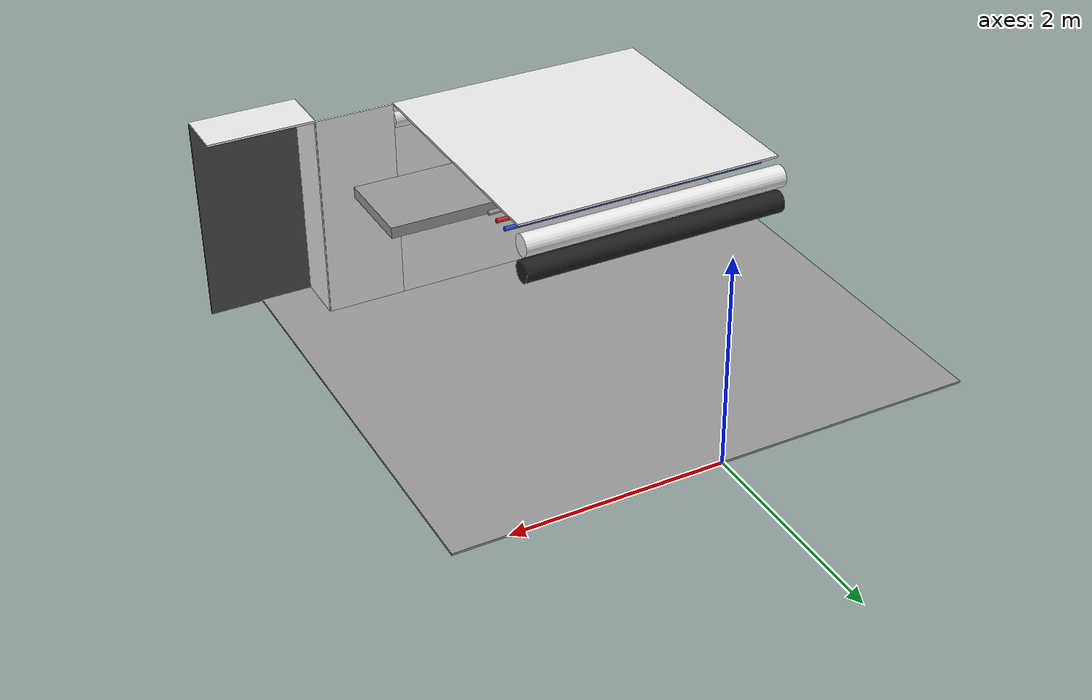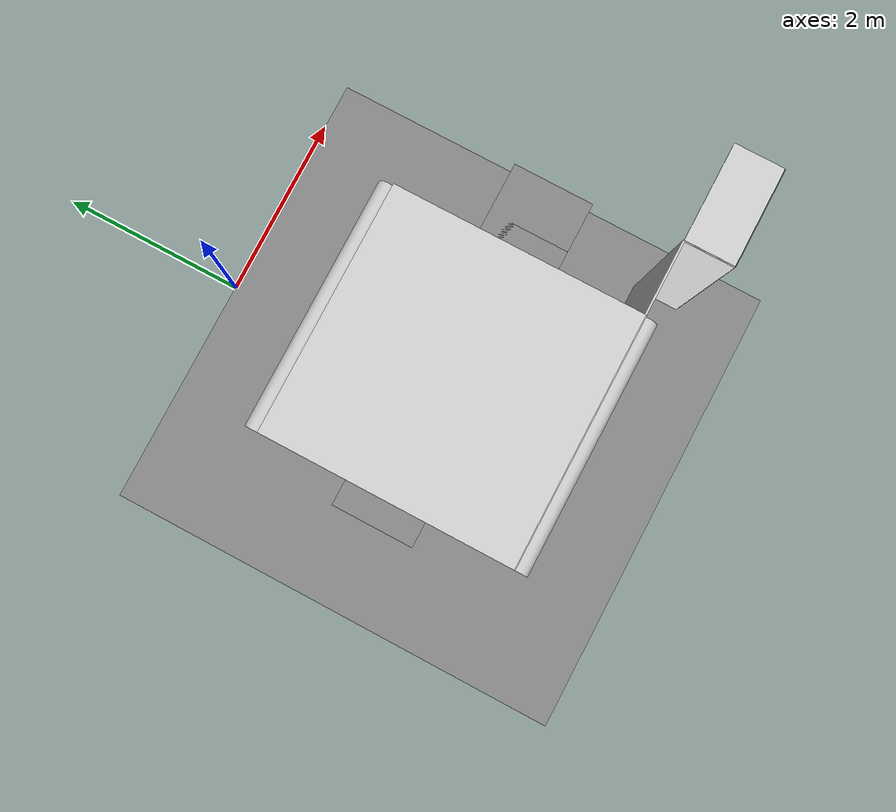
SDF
<sdf version="1.6">
 <world name="default">
  <model name="ceiling_1_1_-1_1_2">
   <pose>1.5 -2.5 1.7 0.0 0.0 4.71</pose>
   <link name="link_1">
    <visual name="visual">
     <geometry><box><size>0.8 1 0.1</size></box></geometry>
     <material>
      <script><uri>file://media/materials/scripts/gazebo.material</uri><name>Gazebo/Grey</name></script>
     </material>
    </visual>
    <collision name="collision"><geometry><box><size>0.8 1 0.1</size></box></geometry></collision>
   </link>
   <static>1</static>
  </model>
  <model name="wall_front_front_left_1_-1_0_2">
   <static>1</static>
   <pose>1.625 -3.75 1.0 0.0 0.0 3.14</pose>
   <link name="link">
    <collision name="collision"><geometry><box><size>0.75 0.02 2.0</size></box></geometry></collision>
    <visual name="visual">
     <material>
      <script><name>Gazebo/White</name><uri>file://media/materials/scripts/gazebo.material</uri></script>
     </material>
     <geometry><box><size>0.75 0.02 2.0</size></box></geometry>
    </visual>
   </link>
  </model>
  <model name="wall_front_inside_back_1_-1_0_2">
   <static>1</static>
   <pose>2.5 -4.25 1.0 0.0 0.0 3.14</pose>
   <link name="link">
    <collision name="collision"><geometry><box><size>1 0.02 2</size></box></geometry></collision>
    <visual name="visual">
     <material>
      <script><name>Gazebo/DarkGrey</name><uri>file://media/materials/scripts/gazebo.material</uri></script>
     </material>
     <geometry><box><size>1 0.02 2</size></box></geometry>
    </visual>
   </link>
  </model>
  <model name="wall_front_inside_right_1_-1_0_2">
   <static>1</static>
   <pose>2.0 -4.0 1.0 0.0 0.0 4.71</pose>
   <link name="link">
    <collision name="collision"><geometry><box><size>0.5 0.02 2</size></box></geometry></collision>
    <visual name="visual">
     <material>
      <script><name>Gazebo/White</name><uri>file://media/materials/scripts/gazebo.material</uri></script>
     </material>
     <geometry><box><size>0.5 0.02 2</size></box></geometry>
    </visual>
   </link>
  </model>
  <model name="wall_front_inside_top_1_-1_0_2">
   <static>1</static>
   <pose>2.5 -4.0 2.0 1.57 0.0 3.14</pose>
   <link name="link">
    <collision name="collision"><geometry><box><size>1 0.02 0.5</size></box></geometry></collision>
    <visual name="visual">
     <material>
      <script><name>Gazebo/White</name><uri>file://media/materials/scripts/gazebo.material</uri></script>
     </material>
     <geometry><box><size>1 0.02 0.5</size></box></geometry>
    </visual>
   </link>
  </model>
  <model name="wall_left_0_-1_0_1">
   <static>1</static>
   <pose>0.0 -3.75 1.0 0.0 0.0 3.14</pose>
   <link name="link">
    <collision name="collision"><geometry><box><size>2.5 0.02 2.0</size></box></geometry></collision>
    <visual name="visual">
     <material>
      <script><name>Gazebo/White</name><uri>file://media/materials/scripts/gazebo.material</uri></script>
     </material>
     <geometry><box><size>2.5 0.02 2.0</size></box></geometry>
    </visual>
   </link>
  </model>
  <model name="wall_top_0_-1_0_1">
   <static>1</static>
   <pose>0.0 -2.5 2.0 1.57 0.0 1.57</pose>
   <link name="link">
    <collision name="collision"><geometry><box><size>2.5 0.02 2.5</size></box></geometry></collision>
    <visual name="visual">
     <material>
      <script><name>Gazebo/White</name><uri>file://media/materials/scripts/gazebo.material</uri></script>
     </material>
     <geometry><box><size>2.5 0.02 2.5</size></box></geometry>
    </visual>
   </link>
  </model>
  <model name="ceiling_1_0_-1_0_1">
   <pose>0.0 -2.5 1.7 0.0 0.0 1.57</pose>
   <link name="link_1">
    <visual name="visual">
     <geometry><box><size>0.8 1 0.1</size></box></geometry>
     <material>
      <script><uri>file://media/materials/scripts/gazebo.material</uri><name>Gazebo/Grey</name></script>
     </material>
    </visual>
    <collision name="collision"><geometry><box><size>0.8 1 0.1</size></box></geometry></collision>
   </link>
   <static>1</static>
  </model>
  <model name="ceiling_1_0_-1_1_1">
   <pose>1.0 -2.5 1.7 0.0 0.0 1.57</pose>
   <link name="link_1">
    <visual name="visual">
     <geometry><box><size>0.8 1 0.1</size></box></geometry>
     <material>
      <script><uri>file://media/materials/scripts/gazebo.material</uri><name>Gazebo/Grey</name></script>
     </material>
    </visual>
    <collision name="collision"><geometry><box><size>0.8 1 0.1</size></box></geometry></collision>
   </link>
   <static>1</static>
  </model>
  <model name="ceiling_1_0_-1_2_1">
   <pose>-1.0 -2.5 1.7 0.0 0.0 1.57</pose>
   <link name="link_1">
    <visual name="visual">
     <geometry><box><size>0.8 1 0.1</size></box></geometry>
     <material>
      <script><uri>file://media/materials/scripts/gazebo.material</uri><name>Gazebo/Grey</name></script>
     </material>
    </visual>
    <collision name="collision"><geometry><box><size>0.8 1 0.1</size></box></geometry></collision>
   </link>
   <static>1</static>
  </model>
  <model name="white_pipe_left_0_-1_0_1">
   <static>1</static>
   <pose>0.0 -2.5 1.84 0.0 0.0 1.57</pose>
   <link name="link_0">
    <visual name="visual">
     <pose>-1.3 0 0 1.57 0 0</pose>
     <geometry><cylinder><radius>0.1</radius><length>2.5</length></cylinder></geometry>
     <material>
      <script><uri>file://media/materials/scripts/gazebo.material</uri><name>Gazebo/White</name></script>
     </material>
    </visual>
    <collision name="collision">
     <pose>-1.3 0 0 1.57 0 0</pose>
     <geometry><cylinder><radius>0.1</radius><length>2.5</length></cylinder></geometry>
    </collision>
   </link>
  </model>
  <model name="white_pipe_right_0_-1_0_1">
   <static>1</static>
   <pose>0.0 -2.5 1.84 0.0 0.0 1.57</pose>
   <link name="link_0">
    <visual name="visual">
     <pose>1.3 0 0 1.57 0 0</pose>
     <geometry><cylinder><radius>0.1</radius><length>2.5</length></cylinder></geometry>
     <material>
      <script><uri>file://media/materials/scripts/gazebo.material</uri><name>Gazebo/White</name></script>
     </material>
    </visual>
    <collision name="collision">
     <pose>1.3 0 0 1.57 0 0</pose>
     <geometry><cylinder><radius>0.1</radius><length>2.5</length></cylinder></geometry>
    </collision>
   </link>
  </model>
  <model name="black_pipe_right_0_-1_0_1">
   <static>1</static>
   <pose>0.0 -2.5 1.84 0.0 0.0 1.57</pose>
   <link name="link_0">
    <visual name="visual">
     <pose>1.3 0 -0.25 1.57 0 0</pose>
     <geometry><cylinder><radius>0.1</radius><length>2.5</length></cylinder></geometry>
     <material>
      <script><uri>file://media/materials/scripts/gazebo.material</uri><name>Gazebo/Black</name></script>
     </material>
    </visual>
    <collision name="collision">
     <pose>1.3 0 -0.25 1.57 0 0</pose>
     <geometry><cylinder><radius>0.1</radius><length>2.5</length></cylinder></geometry>
    </collision>
   </link>
  </model>
  <model name="grey_pipe_right_0_-1_0_1">
   <static>1</static>
   <pose>0.0 -2.5 1.84 0.0 0.0 1.57</pose>
   <link name="link_0">
    <visual name="visual">
     <pose>0.7 0 0 1.57 0 0</pose>
     <geometry><cylinder><radius>0.02</radius><length>2.5</length></cylinder></geometry>
     <material>
      <script><uri>file://media/materials/scripts/gazebo.material</uri><name>Gazebo/Grey</name></script>
     </material>
    </visual>
    <collision name="collision">
     <pose>0.7 0 0 1.57 0 0</pose>
     <geometry><cylinder><radius>0.02</radius><length>2.5</length></cylinder></geometry>
    </collision>
   </link>
  </model>
  <model name="red_pipe_right_0_-1_0_1">
   <static>1</static>
   <pose>0.0 -2.5 1.84 0.0 0.0 1.57</pose>
   <link name="link_0">
    <visual name="visual">
     <pose>0.85 0 0 1.57 0 0</pose>
     <geometry><cylinder><radius>0.02</radius><length>2.5</length></cylinder></geometry>
     <material>
      <script><uri>file://media/materials/scripts/gazebo.material</uri><name>Gazebo/Red</name></script>
     </material>
    </visual>
    <collision name="collision">
     <pose>0.85 0 0 1.57 0 0</pose>
     <geometry><cylinder><radius>0.02</radius><length>2.5</length></cylinder></geometry>
    </collision>
   </link>
  </model>
  <model name="blue_pipe_right_0_-1_0_1">
   <static>1</static>
   <pose>0.0 -2.5 1.84 0.0 0.0 1.57</pose>
   <link name="link_0">
    <visual name="visual">
     <pose>1 0 0 1.57 0 0</pose>
     <geometry><cylinder><radius>0.02</radius><length>2.5</length></cylinder></geometry>
     <material>
      <script><uri>file://media/materials/scripts/gazebo.material</uri><name>Gazebo/Blue</name></script>
     </material>
    </visual>
    <collision name="collision">
     <pose>1 0 0 1.57 0 0</pose>
     <geometry><cylinder><radius>0.02</radius><length>2.5</length></cylinder></geometry>
    </collision>
   </link>
  </model>
  <model name="panel_0_-1_0_1">
   <static>1</static>
   <pose>0.0 -3.75 1.3 0.0 0.0 1.57</pose>
   <link name="link">
    <collision name="collision"><geometry><box><size>0.04 0.7 1</size></box></geometry></collision>
    <visual name="visual">
     <material>
      <script><name>Gazebo/Blue</name><uri>file://media/materials/scripts/gazebo.material</uri></script>
     </material>
     <geometry><box><size>0.04 0.7 1</size></box></geometry>
    </visual>
   </link>
  </model>
  <model name="wall_bottom_0_-1_0_1">
   <static>1</static>
   <pose>0.0 -2.5 0.0 0.0 0.0 1.57</pose>
   <link name="link">
    <collision name="collision"><geometry><box><size>5.0 5.0 0.02</size></box></geometry></collision>
    <visual name="visual">
     <material>
      <script><name>Gazebo/Grey</name><uri>file://media/materials/scripts/gazebo.material</uri></script>
     </material>
     <geometry><box><size>5.0 5.0 0.02</size></box></geometry>
    </visual>
   </link>
  </model>
 </world>
</sdf>
